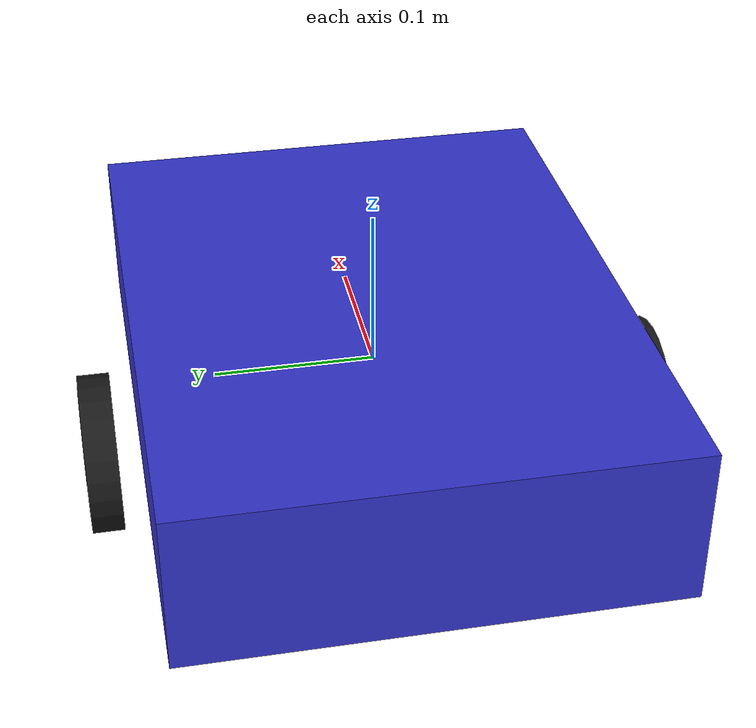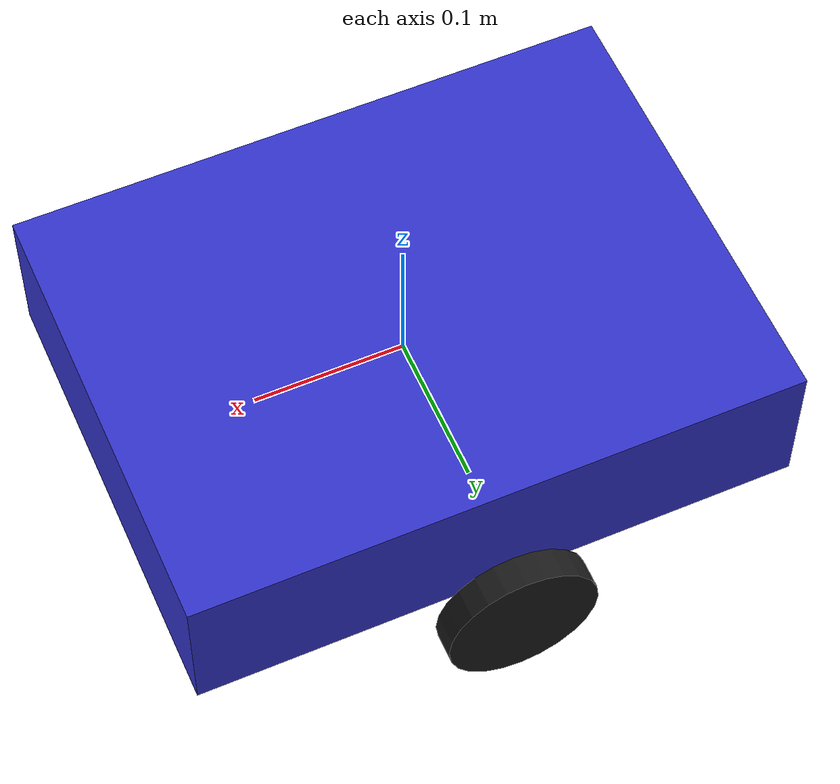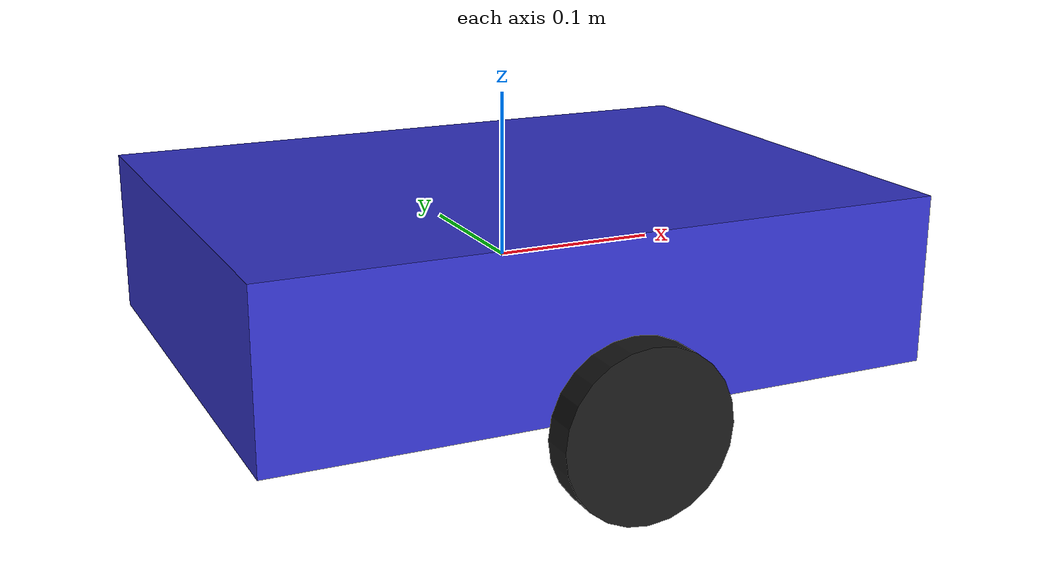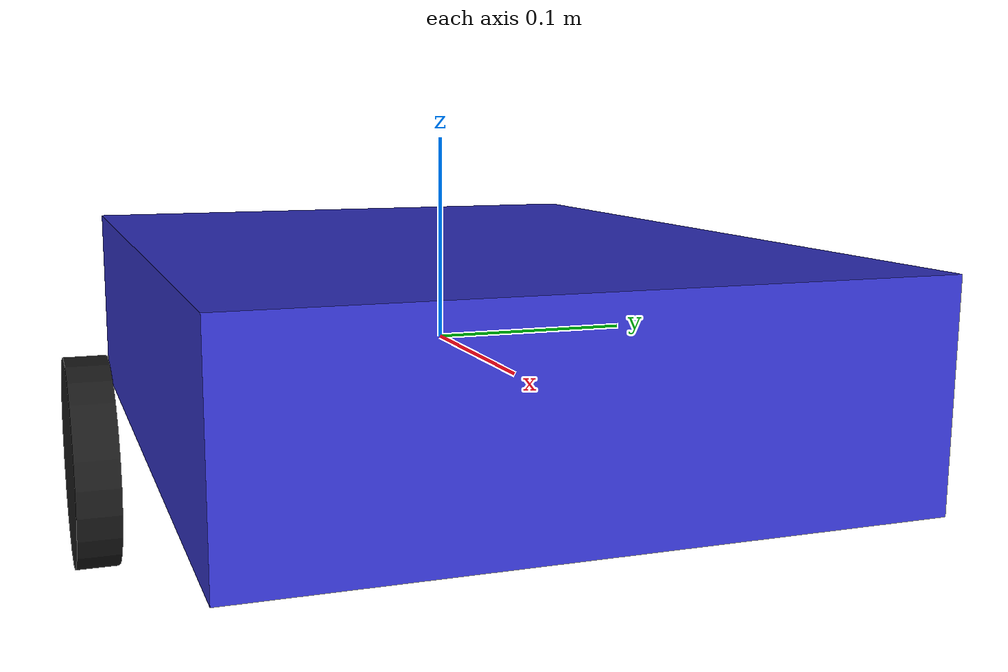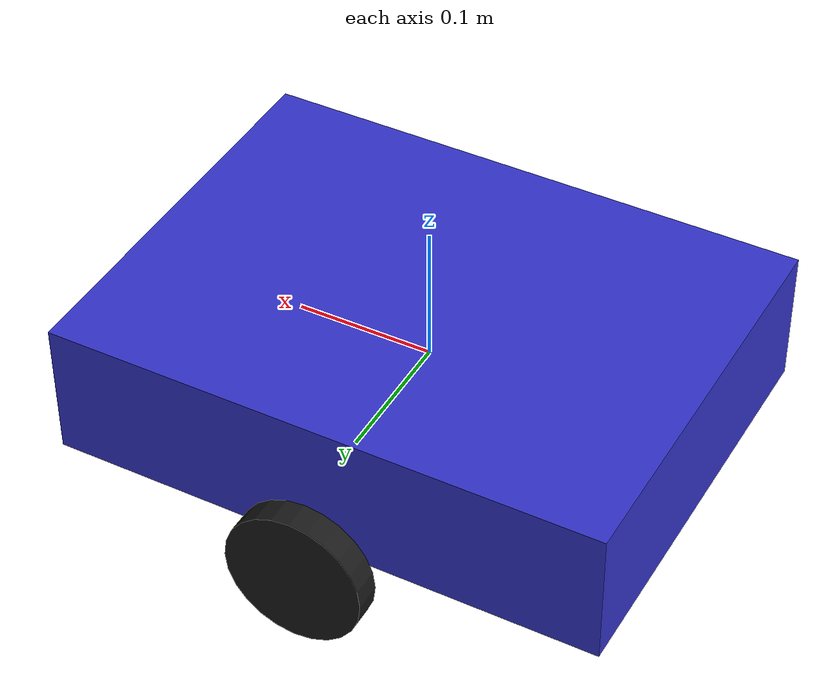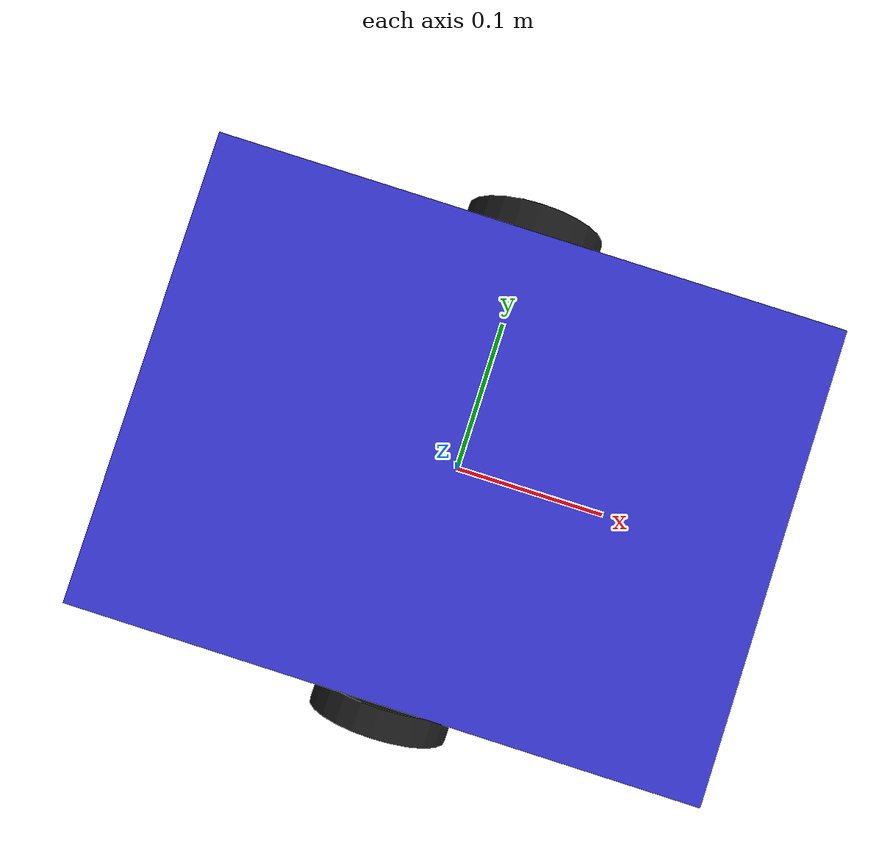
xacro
<?xml version="1.0"?>
<robot xmlns:xacro="http://www.ros.org/wiki/xacro" name="diff_robot">

  <!-- 参数定义 -->
  <xacro:property name="chassis_length" value="0.4"/>
  <xacro:property name="chassis_width" value="0.3"/>
  <xacro:property name="chassis_height" value="0.1"/>
  <xacro:property name="chassis_mass" value="5.0"/>

  <xacro:property name="wheel_radius" value="0.05"/>
  <xacro:property name="wheel_width" value="0.02"/>
  <xacro:property name="wheel_mass" value="0.5"/>
  <xacro:property name="wheel_separation" value="0.35"/>

  <!-- 惯性宏 -->
  <xacro:macro name="box_inertia" params="m x y z">
    <inertial>
      <mass value="${m}"/>
      <inertia ixx="${m*(y*y+z*z)/12}" ixy="0" ixz="0"
               iyy="${m*(x*x+z*z)/12}" iyz="0"
               izz="${m*(x*x+y*y)/12}"/>
    </inertial>
  </xacro:macro>

  <xacro:macro name="cylinder_inertia" params="m r h">
    <inertial>
      <mass value="${m}"/>
      <inertia ixx="${m*(3*r*r+h*h)/12}" ixy="0" ixz="0"
               iyy="${m*(3*r*r+h*h)/12}" iyz="0"
               izz="${m*r*r/2}"/>
    </inertial>
  </xacro:macro>

  <!-- 底盘 -->
  <link name="base_link">
    <visual>
      <geometry>
        <box size="${chassis_length} ${chassis_width} ${chassis_height}"/>
      </geometry>
      <material name="blue">
        <color rgba="0.2 0.2 0.8 1.0"/>
      </material>
    </visual>
    <collision>
      <geometry>
        <box size="${chassis_length} ${chassis_width} ${chassis_height}"/>
      </geometry>
    </collision>
    <xacro:box_inertia m="${chassis_mass}" x="${chassis_length}" y="${chassis_width}" z="${chassis_height}"/>
  </link>

  <!-- 轮子宏 -->
  <xacro:macro name="wheel" params="prefix y_offset">
    <link name="${prefix}_wheel">
      <visual>
        <origin xyz="0 0 0" rpy="${pi/2} 0 0"/>
        <geometry>
          <cylinder radius="${wheel_radius}" length="${wheel_width}"/>
        </geometry>
        <material name="black">
          <color rgba="0.1 0.1 0.1 1.0"/>
        </material>
      </visual>
      <collision>
        <origin xyz="0 0 0" rpy="${pi/2} 0 0"/>
        <geometry>
          <cylinder radius="${wheel_radius}" length="${wheel_width}"/>
        </geometry>
      </collision>
      <xacro:cylinder_inertia m="${wheel_mass}" r="${wheel_radius}" h="${wheel_width}"/>
    </link>

    <joint name="${prefix}_wheel_joint" type="continuous">
      <parent link="base_link"/>
      <child link="${prefix}_wheel"/>
      <origin xyz="0 ${y_offset} ${-chassis_height/2}" rpy="0 0 0"/>
      <axis xyz="0 1 0"/>
      <dynamics damping="0.1" friction="0.1"/>
    </joint>
  </xacro:macro>

  <!-- 左右轮 -->
  <xacro:wheel prefix="left" y_offset="${wheel_separation/2}"/>
  <xacro:wheel prefix="right" y_offset="${-wheel_separation/2}"/>

  <!-- ros2_control 硬件接口 -->
  <ros2_control name="GazeboSystem" type="system">
    <hardware>
      <plugin>gazebo_ros2_control/GazeboSystem</plugin>
    </hardware>
    <joint name="left_wheel_joint">
      <command_interface name="velocity">
        <min>-1.0</min>
        <max>1.0</max>
      </command_interface>
      <state_interface name="position"/>
      <state_interface name="velocity"/>
    </joint>
    <joint name="right_wheel_joint">
      <command_interface name="velocity">
        <min>-1.0</min>
        <max>1.0</max>
      </command_interface>
      <state_interface name="position"/>
      <state_interface name="velocity"/>
    </joint>
  </ros2_control>

  <!-- Gazebo ros2_control 插件 -->
  <gazebo>
    <plugin name="gazebo_ros2_control" filename="libgazebo_ros2_control.so">
      <parameters>$(find diff_robot_control)/config/diff_robot_controllers.yaml</parameters>
    </plugin>
  </gazebo>

  <!-- 万向轮 -->
  <link name="caster_wheel">
    <visual>
      <geometry>
        <sphere radius="0.02"/>
      </geometry>
      <material name="gray">
        <color rgba="0.5 0.5 0.5 1.0"/>
      </material>
    </visual>
    <collision>
      <geometry>
        <sphere radius="0.02"/>
      </geometry>
    </collision>
    <inertial>
      <mass value="0.1"/>
      <inertia ixx="0.0001" ixy="0" ixz="0" iyy="0.0001" iyz="0" izz="0.0001"/>
    </inertial>
  </link>

  <joint name="caster_joint" type="continuous">
    <parent link="base_link"/>
    <child link="caster_wheel"/>
    <origin xyz="${-chassis_length/2 + 0.05} 0 ${-chassis_height/2}" rpy="0 0 0"/>
    <axis xyz="1 0 0"/>
    <dynamics damping="0.5" friction="0.1"/>
  </joint>

</robot>
